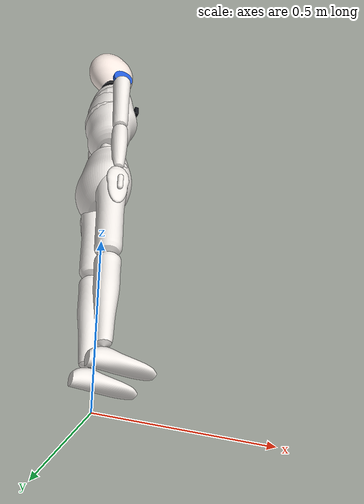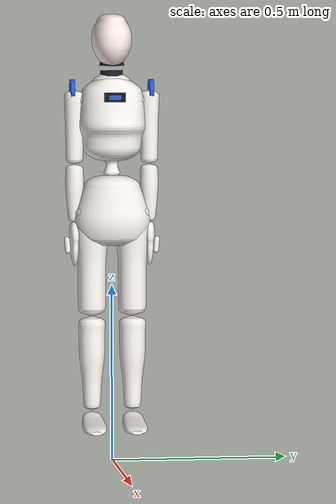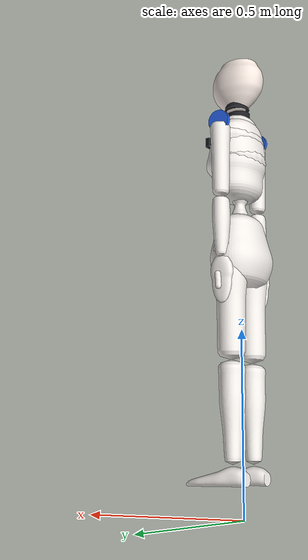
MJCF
<mujoco model="an01">
  <compiler angle="radian" autolimits="true" meshdir="."/>

  <asset>
    <material name="a_shell"  rgba="0.930 0.912 0.895 1" specular="0.42" shininess="0.55"/>
    <material name="a_frame"  rgba="0.115 0.115 0.135 1" specular="0.35" shininess="0.55"/>
    <material name="a_blue"   rgba="0.130 0.350 0.850 1" specular="0.70" shininess="0.80"/>
    <material name="a_visor"  rgba="0.060 0.070 0.090 1" specular="0.80" shininess="0.90"/>
    <material name="a_skin"   rgba="0.952 0.898 0.868 1" specular="0.15" shininess="0.25"/>

    <!-- Visual shells, uniform 0.749 scale (see header note 1). -->
    <mesh name="m_base"    file="an01_meshes/base_link.stl"   scale="0.749 0.749 0.749"/>
    <mesh name="m_waist"   file="an01_meshes/waist_link.stl"  scale="0.749 0.749 0.749"/>
    <mesh name="m_torso"   file="an01_meshes/torso_link.stl"  scale="0.749 0.749 0.749"/>
    <mesh name="m_neck"    file="an01_meshes/neck_link.stl"   scale="0.749 0.749 0.749"/>
    <mesh name="m_head"    file="an01_meshes/head_link.stl"   scale="0.749 0.749 0.749"/>
    <mesh name="m_uarm_l"  file="an01_meshes/l_upper_arm.stl" scale="0.749 0.749 0.749"/>
    <mesh name="m_uarm_r"  file="an01_meshes/r_upper_arm.stl" scale="0.749 0.749 0.749"/>
    <mesh name="m_farm_l"  file="an01_meshes/l_forearm.stl"   scale="0.749 0.749 0.749"/>
    <mesh name="m_farm_r"  file="an01_meshes/r_forearm.stl"   scale="0.749 0.749 0.749"/>
    <mesh name="m_hand_l"  file="an01_meshes/l_hand.stl"      scale="0.749 0.749 0.749"/>
    <mesh name="m_hand_r"  file="an01_meshes/r_hand.stl"      scale="0.749 0.749 0.749"/>
    <mesh name="m_thigh_l" file="an01_meshes/l_thigh.stl"     scale="0.749 0.749 0.749"/>
    <mesh name="m_thigh_r" file="an01_meshes/r_thigh.stl"     scale="0.749 0.749 0.749"/>
    <mesh name="m_shin_l"  file="an01_meshes/l_shin.stl"      scale="0.749 0.749 0.749"/>
    <mesh name="m_shin_r"  file="an01_meshes/r_shin.stl"      scale="0.749 0.749 0.749"/>
    <mesh name="m_foot_l"  file="an01_meshes/l_foot.stl"      scale="0.749 0.749 0.749"/>
    <mesh name="m_foot_r"  file="an01_meshes/r_foot.stl"      scale="0.749 0.749 0.749"/>

    <mesh name="c_base"    file="an01_collision/base_link.stl"   scale="0.749 0.749 0.749"/>
    <mesh name="c_torso"   file="an01_collision/torso_link.stl"  scale="0.749 0.749 0.749"/>
    <mesh name="c_head"    file="an01_collision/head_link.stl"   scale="0.749 0.749 0.749"/>
    <mesh name="c_uarm_l"  file="an01_collision/l_upper_arm.stl" scale="0.749 0.749 0.749"/>
    <mesh name="c_uarm_r"  file="an01_collision/r_upper_arm.stl" scale="0.749 0.749 0.749"/>
    <mesh name="c_farm_l"  file="an01_collision/l_forearm.stl"   scale="0.749 0.749 0.749"/>
    <mesh name="c_farm_r"  file="an01_collision/r_forearm.stl"   scale="0.749 0.749 0.749"/>
    <mesh name="c_thigh_l" file="an01_collision/l_thigh.stl"     scale="0.749 0.749 0.749"/>
    <mesh name="c_thigh_r" file="an01_collision/r_thigh.stl"     scale="0.749 0.749 0.749"/>
    <mesh name="c_shin_l"  file="an01_collision/l_shin.stl"      scale="0.749 0.749 0.749"/>
    <mesh name="c_shin_r"  file="an01_collision/r_shin.stl"      scale="0.749 0.749 0.749"/>
    <mesh name="c_foot_l"  file="an01_collision/l_foot.stl"      scale="0.749 0.749 0.749"/>
    <mesh name="c_foot_r"  file="an01_collision/r_foot.stl"      scale="0.749 0.749 0.749"/>
  </asset>

  <default>
    <default class="an01">
      <geom condim="3" friction="0.9 0.02 0.001" material="a_shell" group="1"/>
      <joint type="hinge" limited="true" damping="1.2" armature="0.012"/>
      <site size="0.010" rgba="0 0 0 0"/>

      <default class="a_leg">
        <joint damping="6.0" armature="0.045"/>
        <!-- See the note on a_arm: tuned for 22.4 kg, not the 38 kg of the previous model. -->
        <position kp="420" kv="34" forcerange="-180 180"/>
      </default>
      <default class="a_arm">
        <joint damping="2.0" armature="0.020"/>
        <position kp="150" kv="16" forcerange="-60 60"/>
      </default>
      <default class="a_finger">
        <joint damping="0.20" armature="0.004"/>
        <position kp="26" kv="1.6" forcerange="-12 12"/>
      </default>
      <default class="a_skin">
        <geom contype="0" conaffinity="0" group="1" mass="0"/>
      </default>
      <!-- Collision proxies: present to the solver, invisible to the renderer. -->
      <default class="a_hull">
        <geom group="3" rgba="0 0 0 0" mass="0"/>
      </default>
      <default class="a_hullfoot">
        <geom group="3" rgba="0 0 0 0" mass="0"
              condim="4" friction="1.35 0.03 0.002" priority="2"/>
      </default>
      <!-- Small cosmetic details (face, ear pods) that the package mesh does not carry. -->
      <default class="a_deco">
        <geom contype="0" conaffinity="0" group="2" mass="0"/>
      </default>
    </default>
  </default>

  <worldbody>
    <!-- Pelvis rides at 0.738: the sole sits that far below base_link at this scale, so this
         is the height at which the feet just touch the floor. -->
    <body name="pelvis" pos="0 0 0.738" childclass="an01">
      <freejoint name="root"/>
      <site name="imu" pos="0 0 0"/>
      <inertial pos="-0.0034 0 0.0129" mass="4.325"
                diaginertia="0.011667 0.007110 0.006276"/>
      <geom class="a_skin" type="mesh" mesh="m_base"/>
      <geom class="a_hull" name="pelvis_g" type="mesh" mesh="c_base"/>

      <!-- ===================== TORSO ===================== -->
      <!-- Source: waist_yaw at base+0.12324, then waist_pitch (dropped) at the same point. The
           waist shell is a short link between them and rides with the torso here. -->
      <body name="torso" pos="0 0 0.09231">
        <joint name="waist_yaw" axis="0 0 1" range="-0.70 0.70" damping="9.0" armature="0.05"/>
        <inertial pos="-0.0098 0 0.1515" mass="3.664"
                  diaginertia="0.027232 0.016971 0.012798"/>
        <geom class="a_skin" type="mesh" mesh="m_waist"/>
        <geom class="a_skin" type="mesh" mesh="m_torso"/>
        <geom class="a_hull" name="chest_g" type="mesh" mesh="c_torso"/>

        <geom class="a_deco" type="ellipsoid" size="0.070 0.092 0.046" pos="0 0 0.140"/>
        <geom class="a_deco" type="ellipsoid" size="0.062 0.098 0.044" pos="0 0 0.196"/>
        <geom class="a_deco" type="ellipsoid" size="0.048 0.060 0.038" pos="0 0 0.238"/>
        <!-- Neck ring: the dark collar the head sits in, closing the last few millimetres. -->
        <geom class="a_deco" type="cylinder" size="0.032 0.020" pos="0 0 0.262"
              material="a_frame"/>

        <!-- Chest indicator panel and blue shoulder discs: from the reference render, not the
             package mesh, which is a bare shell. -->
        <geom class="a_deco" type="box" size="0.006 0.030 0.013" pos="0.084 0 0.208"
              material="a_visor"/>
        <geom class="a_deco" type="box" size="0.003 0.017 0.006" pos="0.089 0 0.208"
              material="a_blue"/>
        <geom class="a_deco" type="cylinder" size="0.030 0.006" pos="0 0.112 0.226"
              euler="1.5708 0 0" material="a_blue"/>
        <geom class="a_deco" type="cylinder" size="0.030 0.006" pos="0 -0.112 0.226"
              euler="1.5708 0 0" material="a_blue"/>

        <!-- ===================== HEAD ===================== -->
        <!-- Source: neck_yaw at torso+0.35392, head_pitch a further 0.04424 up. Both axes sit
             at the neck base so the head pivots on the neck, not about its own centre. -->
        <body name="head" pos="0 0 0.29823">
          <joint name="neck_yaw" axis="0 0 1" pos="0 0 -0.033" range="-1.40 1.40"
                 damping="0.35" armature="0.006"/>
          <joint name="neck_pitch" axis="0 1 0" pos="0 0 -0.033" range="-0.50 0.60"
                 damping="0.35" armature="0.006"/>
          <inertial pos="0.0223 0 0.0631" mass="0.493"
                    diaginertia="0.000448 0.000640 0.000528"/>
          <geom class="a_skin" type="mesh" mesh="m_neck" material="a_frame"/>
          <geom class="a_skin" type="mesh" mesh="m_head" material="a_skin"/>
          <geom class="a_hull" name="head_g" type="mesh" mesh="c_head"/>

          <!-- Forward-looking camera, between the eyes. alpha 0: see the header. -->
          <camera name="head_cam" pos="0.064 0 0.000" euler="0 -1.5708 1.5708" fovy="70"/>
          <site name="head_cam_site" pos="0.064 0 0.000"/>

          <camera name="look_left" pos="0.040 0.040 0.000" xyaxes="0.866 -0.5 0 0 0 1"
                  fovy="90"/>
          <camera name="look_right" pos="0.040 -0.040 0.000" xyaxes="-0.866 -0.5 0 0 0 1"
                  fovy="90"/>
        </body>

        <!-- ===================== RIGHT ARM ===================== -->
        <!-- Source: r_shoulder_* at torso+(0, -0.14220, 0.30178), the three axes coincident. -->
        <body name="shoulder_r" pos="0 -0.10651 0.22603">
          <joint name="sh_pitch_r" axis="0 1 0" range="-3.00 1.80" class="a_arm"/>
          <joint name="sh_roll_r" axis="1 0 0" range="-2.20 0.25" class="a_arm"/>
          <joint name="sh_yaw_r" axis="0 0 1" range="-1.80 1.80" class="a_arm"/>
          <inertial pos="0 0 -0.1834" mass="1.427"
                    diaginertia="0.001451 0.001446 0.000065"/>
          <geom class="a_skin" type="mesh" mesh="m_uarm_r"/>
          <geom class="a_hull" name="uarm_r" type="mesh" mesh="c_uarm_r"/>

          <body name="forearm_r" pos="0 0 -0.20947">
            <joint name="elbow_r" axis="0 1 0" range="-2.40 0.05" class="a_arm"/>
            <inertial pos="0 0 -0.0576" mass="0.423"
                      diaginertia="0.000256 0.000252 0.000035"/>
            <geom class="a_skin" type="mesh" mesh="m_farm_r"/>
            <geom class="a_hull" name="farm_r" type="mesh" mesh="c_farm_r"/>

            <body name="palm_r" pos="0 0 -0.16450">
              <inertial pos="0 0 -0.0552" mass="0.042"
                        diaginertia="0.000043 0.000050 0.000014"/>
              <geom class="a_skin" type="mesh" mesh="m_hand_r"/>
              <geom class="a_hull" name="palm_r_g" type="box" size="0.011 0.026 0.030"
                    pos="0 0 -0.026"/>
              <!-- The IK target. sim/reach.py aims THIS site, not the palm body. -->
              <site name="grip_r" pos="0 0 -0.050"/>

              <body name="finger_r1" pos="0 -0.022 -0.050">
                <joint name="grip_r1" axis="1 0 0" range="0 0.9" class="a_finger"/>
                <inertial pos="0 0 -0.015" mass="0.02" diaginertia="5e-6 5e-6 5e-6"/>
                <geom name="fing_r1" type="capsule" size="0.008"
                      fromto="0 0 0 0 0.003 -0.032"/>
              </body>
              <body name="finger_r2" pos="0 0.022 -0.050">
                <joint name="grip_r2" axis="-1 0 0" range="0 0.9" class="a_finger"/>
                <inertial pos="0 0 -0.015" mass="0.02" diaginertia="5e-6 5e-6 5e-6"/>
                <geom name="fing_r2" type="capsule" size="0.008"
                      fromto="0 0 0 0 -0.003 -0.032"/>
              </body>
            </body>
          </body>
        </body>

        <!-- ===================== LEFT ARM ===================== -->
        <body name="shoulder_l" pos="0 0.10651 0.22603">
          <joint name="sh_pitch_l" axis="0 1 0" range="-3.00 1.80" class="a_arm"/>
          <joint name="sh_roll_l" axis="1 0 0" range="-0.25 2.20" class="a_arm"/>
          <joint name="sh_yaw_l" axis="0 0 1" range="-1.80 1.80" class="a_arm"/>
          <inertial pos="0 0 -0.1834" mass="1.427"
                    diaginertia="0.001451 0.001446 0.000065"/>
          <geom class="a_skin" type="mesh" mesh="m_uarm_l"/>
          <geom class="a_hull" name="uarm_l" type="mesh" mesh="c_uarm_l"/>

          <body name="forearm_l" pos="0 0 -0.20947">
            <joint name="elbow_l" axis="0 1 0" range="-2.40 0.05" class="a_arm"/>
            <inertial pos="0 0 -0.0576" mass="0.423"
                      diaginertia="0.000256 0.000252 0.000035"/>
            <geom class="a_skin" type="mesh" mesh="m_farm_l"/>
            <geom class="a_hull" name="farm_l" type="mesh" mesh="c_farm_l"/>

            <body name="palm_l" pos="0 0 -0.16450">
              <inertial pos="0 0 -0.0552" mass="0.042"
                        diaginertia="0.000043 0.000050 0.000014"/>
              <geom class="a_skin" type="mesh" mesh="m_hand_l"/>
              <geom class="a_hull" name="palm_l_g" type="box" size="0.011 0.026 0.030"
                    pos="0 0 -0.026"/>
              <site name="grip_l" pos="0 0 -0.050"/>

              <body name="finger_l1" pos="0 -0.022 -0.050">
                <joint name="grip_l1" axis="1 0 0" range="0 0.9" class="a_finger"/>
                <inertial pos="0 0 -0.015" mass="0.02" diaginertia="5e-6 5e-6 5e-6"/>
                <geom name="fing_l1" type="capsule" size="0.008"
                      fromto="0 0 0 0 0.003 -0.032"/>
              </body>
              <body name="finger_l2" pos="0 0.022 -0.050">
                <joint name="grip_l2" axis="-1 0 0" range="0 0.9" class="a_finger"/>
                <inertial pos="0 0 -0.015" mass="0.02" diaginertia="5e-6 5e-6 5e-6"/>
                <geom name="fing_l2" type="capsule" size="0.008"
                      fromto="0 0 0 0 -0.003 -0.032"/>
              </body>
            </body>
          </body>
        </body>
      </body>

      <!-- ===================== RIGHT LEG ===================== -->
      <!-- Source: r_hip_* at base+(0, -0.07742, 0), the three axes coincident. -->
      <body name="hip_r" pos="0 -0.05799 0">
        <joint name="hip_yaw_r" axis="0 0 1" range="-0.70 0.70" class="a_leg" damping="12.0"/>
        <joint name="hip_roll_r" axis="1 0 0" range="-0.70 0.50" class="a_leg"/>
        <joint name="hip_pitch_r" axis="0 1 0" range="-2.00 1.00" class="a_leg"/>
        <inertial pos="0 0 -0.2831" mass="3.519"
                  diaginertia="0.009472 0.009441 0.000486"/>
        <geom class="a_skin" type="mesh" mesh="m_thigh_r"/>
        <geom class="a_hull" name="thigh_r" type="mesh" mesh="c_thigh_r"/>

        <body name="shin_r" pos="0 0 -0.32426">
          <joint name="knee_r" axis="0 1 0" range="0 2.40" class="a_leg"/>
          <inertial pos="0 0 -0.0754" mass="1.396"
                    diaginertia="0.001754 0.001741 0.000165"/>
          <geom class="a_skin" type="mesh" mesh="m_shin_r"/>
          <geom class="a_hull" name="shin_r_g" type="mesh" mesh="c_shin_r"/>

          <body name="foot_r" pos="0 0 -0.26982">
            <joint name="ank_pitch_r" axis="0 1 0" range="-1.00 0.70" class="a_leg"/>
            <joint name="ank_roll_r" axis="1 0 0" range="-0.50 0.50" class="a_leg"/>
            <inertial pos="0.0405 0 -0.0374" mass="0.111"
                      diaginertia="0.000058 0.000247 0.000263"/>
            <geom class="a_skin" type="mesh" mesh="m_foot_r"/>
            <geom class="a_hullfoot" name="foot_r_g" type="box"
                  size="0.095 0.0425 0.012" pos="0.026 0 -0.063"/>
            <site name="sole_r" pos="0.040 0 -0.056"/>
          </body>
        </body>
      </body>

      <!-- ===================== LEFT LEG ===================== -->
      <body name="hip_l" pos="0 0.05799 0">
        <joint name="hip_yaw_l" axis="0 0 1" range="-0.70 0.70" class="a_leg" damping="12.0"/>
        <joint name="hip_roll_l" axis="1 0 0" range="-0.50 0.70" class="a_leg"/>
        <joint name="hip_pitch_l" axis="0 1 0" range="-2.00 1.00" class="a_leg"/>
        <inertial pos="0 0 -0.2831" mass="3.519"
                  diaginertia="0.009472 0.009441 0.000486"/>
        <geom class="a_skin" type="mesh" mesh="m_thigh_l"/>
        <geom class="a_hull" name="thigh_l" type="mesh" mesh="c_thigh_l"/>

        <body name="shin_l" pos="0 0 -0.32426">
          <joint name="knee_l" axis="0 1 0" range="0 2.40" class="a_leg"/>
          <inertial pos="0 0 -0.0754" mass="1.396"
                    diaginertia="0.001754 0.001741 0.000165"/>
          <geom class="a_skin" type="mesh" mesh="m_shin_l"/>
          <geom class="a_hull" name="shin_l_g" type="mesh" mesh="c_shin_l"/>

          <body name="foot_l" pos="0 0 -0.26982">
            <joint name="ank_pitch_l" axis="0 1 0" range="-1.00 0.70" class="a_leg"/>
            <joint name="ank_roll_l" axis="1 0 0" range="-0.50 0.50" class="a_leg"/>
            <inertial pos="0.0405 0 -0.0374" mass="0.111"
                      diaginertia="0.000058 0.000247 0.000263"/>
            <geom class="a_skin" type="mesh" mesh="m_foot_l"/>
            <geom class="a_hullfoot" name="foot_l_g" type="box"
                  size="0.095 0.0425 0.012" pos="0.026 0 -0.063"/>
            <site name="sole_l" pos="0.040 0 -0.056"/>
          </body>
        </body>
      </body>
    </body>
  </worldbody>

  <!-- Fingers move together on one actuator: a two-finger pinch does not need independent
       control, and one command per hand is what brain/skills.py issues. -->
  <tendon>
    <fixed name="grip_r_t">
      <joint joint="grip_r1" coef="1"/>
      <joint joint="grip_r2" coef="-1"/>
    </fixed>
    <fixed name="grip_l_t">
      <joint joint="grip_l1" coef="1"/>
      <joint joint="grip_l2" coef="-1"/>
    </fixed>
  </tendon>
  <equality>
    <tendon tendon1="grip_r_t"/>
    <tendon tendon1="grip_l_t"/>
  </equality>

  <actuator>
    <!-- neck (2) -->
    <position name="neck_yaw" joint="neck_yaw" ctrlrange="-1.40 1.40" kp="25" kv="2.5"/>
    <!-- Pitch carries the head against gravity, so it needs more than yaw. Everything this
         robot works with -- drum, basket, counter -- is below eye level. -->
    <position name="neck_pitch" joint="neck_pitch" ctrlrange="-0.50 0.60" kp="35" kv="3.0"/>

    <!-- legs (12) -->
    <position name="hip_yaw_r" joint="hip_yaw_r" ctrlrange="-0.70 0.70" kp="200" kv="26" forcerange="-180 180"/>
    <position name="hip_roll_r" joint="hip_roll_r" ctrlrange="-0.70 0.50" class="a_leg"/>
    <position name="hip_pitch_r" joint="hip_pitch_r" ctrlrange="-2.00 1.00" class="a_leg"/>
    <position name="knee_r" joint="knee_r" ctrlrange="0 2.40" class="a_leg"/>
    <position name="ank_pitch_r" joint="ank_pitch_r" ctrlrange="-1.00 0.70" class="a_leg"/>
    <position name="ank_roll_r" joint="ank_roll_r" ctrlrange="-0.50 0.50" class="a_leg"/>
    <position name="hip_yaw_l" joint="hip_yaw_l" ctrlrange="-0.70 0.70" kp="200" kv="26" forcerange="-180 180"/>
    <position name="hip_roll_l" joint="hip_roll_l" ctrlrange="-0.50 0.70" class="a_leg"/>
    <position name="hip_pitch_l" joint="hip_pitch_l" ctrlrange="-2.00 1.00" class="a_leg"/>
    <position name="knee_l" joint="knee_l" ctrlrange="0 2.40" class="a_leg"/>
    <position name="ank_pitch_l" joint="ank_pitch_l" ctrlrange="-1.00 0.70" class="a_leg"/>
    <position name="ank_roll_l" joint="ank_roll_l" ctrlrange="-0.50 0.50" class="a_leg"/>

    <!-- waist (1) -->
    <position name="waist_yaw" joint="waist_yaw" ctrlrange="-0.70 0.70" kp="60" kv="14"/>

    <!-- arms (8) -->
    <position name="sh_pitch_r" joint="sh_pitch_r" ctrlrange="-3.00 1.80" class="a_arm"/>
    <position name="sh_roll_r" joint="sh_roll_r" ctrlrange="-2.20 0.25" class="a_arm"/>
    <position name="sh_yaw_r" joint="sh_yaw_r" ctrlrange="-1.80 1.80" class="a_arm"/>
    <position name="elbow_r" joint="elbow_r" ctrlrange="-2.40 0.05" class="a_arm"/>
    <position name="sh_pitch_l" joint="sh_pitch_l" ctrlrange="-3.00 1.80" class="a_arm"/>
    <position name="sh_roll_l" joint="sh_roll_l" ctrlrange="-0.25 2.20" class="a_arm"/>
    <position name="sh_yaw_l" joint="sh_yaw_l" ctrlrange="-1.80 1.80" class="a_arm"/>
    <position name="elbow_l" joint="elbow_l" ctrlrange="-2.40 0.05" class="a_arm"/>

    <!-- grippers (2) -->
    <position name="grip_r" joint="grip_r1" ctrlrange="0 0.9" class="a_finger"/>
    <position name="grip_l" joint="grip_l1" ctrlrange="0 0.9" class="a_finger"/>
  </actuator>
</mujoco>
